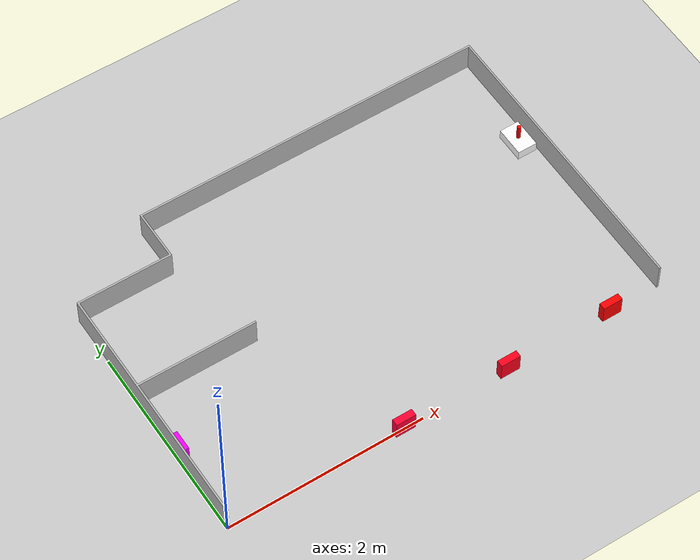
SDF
<?xml version="1.0"?>
<sdf version="1.6">
  <world name="default">
    <physics type="ode">
      <real_time_update_rate>1000.0</real_time_update_rate>
      <max_step_size>0.001</max_step_size>
      <real_time_factor>1</real_time_factor>
      <ode>
        <solver>
          <type>quick</type>
          <iters>150</iters>
          <precon_iters>0</precon_iters>
          <sor>1.400000</sor>
          <use_dynamic_moi_rescaling>1</use_dynamic_moi_rescaling>
        </solver>
        <constraints>
          <cfm>0.00001</cfm>
          <erp>0.2</erp>
          <contact_max_correcting_vel>2000.000000</contact_max_correcting_vel>
          <contact_surface_layer>0.01000</contact_surface_layer>
        </constraints>
      </ode>
    </physics>

    <include>
      <uri>model://ground_plane</uri>
    </include>

    <include>
      <uri>model://sun</uri>
    </include>

    <include>
      <uri>model://my_map</uri>
      <static>true</static>
    </include>

    <!-- Infeed Station -->
    <model name="Infeed Station">
    <!--      x   y   z  rpw -->
      <pose>4.4 2.0 0.05 0 0 0</pose>
      <static>true</static>

      <link name="link">

        <visual name="visual">
          <geometry>
            <box>
              <size>0.20 0.30 0.10</size>
            </box>
          </geometry>
          <material>
            <ambient>1 1 1 1</ambient>
          </material>
        </visual>

        <collision name="collision">
          <geometry>
            <box>
              <size>0.20 0.30 0.10</size>
            </box>
          </geometry>

          <surface>
            <friction>
              <ode>
                <mu>10</mu>
                <mu2>10</mu2>
              </ode>
            </friction>
          </surface>

        </collision>

      </link>
    </model>

    <!-- Obstacle 1 -->
    <model name="Obstacle1">
      <pose>4.4 2.0 0.18 0 0 0</pose>
      <static>false</static>

      <link name="link">

        <visual name="visual">
          <geometry>
            <cylinder>
              <radius>0.02</radius>
              <length>0.15</length>
            </cylinder>
          </geometry>
          <material>
            <ambient>1 0 0 1</ambient>
          </material>
        </visual>

        <collision name="collision">
          <geometry>
            <cylinder>
              <radius>0.02</radius>
              <length>0.15</length>
            </cylinder>
          </geometry>

          <surface>
            <friction>
              <ode>
                <mu>10</mu>
                <mu2>10</mu2>
              </ode>
            </friction>
          </surface>

        </collision>

      </link>
    </model>

    <!-- Station 1 -->
    <model name="Station 1">
    <!--      x   y   z  rpw -->
      <pose>4.0 0.0 0.1 0 0 0</pose>
      <static>true</static>

      <link name="link">

        <visual name="visual">
          <geometry>
            <box>
              <size>0.20 0.07 0.20</size>
            </box>
          </geometry>
          <material>
            <ambient>1 0 0 1</ambient>
          </material>
        </visual>

        <collision name="collision">
          <geometry>
            <box>
              <size>0.20 0.07 0.20</size>
            </box>
          </geometry>

          <surface>
            <friction>
              <ode>
                <mu>10</mu>
                <mu2>10</mu2>
              </ode>
            </friction>
          </surface>

        </collision>

      </link>
    </model>

    <!-- Station 2 -->
    <model name="Station 2">
    <!--      x   y   z  rpw -->
      <pose>2.9 0.0 0.1 0 0 0</pose>
      <static>true</static>

      <link name="link">

        <visual name="visual">
          <geometry>
            <box>
              <size>0.20 0.07 0.20</size>
            </box>
          </geometry>
          <material>
            <ambient>1 0 0.1 1</ambient>
          </material>
        </visual>

        <collision name="collision">
          <geometry>
            <box>
              <size>0.20 0.07 0.20</size>
            </box>
          </geometry>

          <surface>
            <friction>
              <ode>
                <mu>10</mu>
                <mu2>10</mu2>
              </ode>
            </friction>
          </surface>

        </collision>

      </link>
    </model>

    <!-- Station 3 -->
    <model name="Station 3">
    <!--      x   y   z  rpw -->
      <pose>1.8 0.0 0.1 0 0 0</pose>
      <static>true</static>

      <link name="link">

        <visual name="visual">
          <geometry>
            <box>
              <size>0.20 0.07 0.20</size>
            </box>
          </geometry>
          <material>
            <ambient>1 0 0.2 1</ambient>
          </material>
        </visual>

        <collision name="collision">
          <geometry>
            <box>
              <size>0.20 0.07 0.20</size>
            </box>
          </geometry>

          <surface>
            <friction>
              <ode>
                <mu>10</mu>
                <mu2>10</mu2>
              </ode>
            </friction>
          </surface>

        </collision>

      </link>
    </model>

    <!-- Reject Station -->
    <model name="Reject Station">
    <!--      x   y   z  rpw -->
      <pose>0.05 0.85 0.1 0 0 0</pose>
      <static>true</static>

      <link name="link">

        <visual name="visual">
          <geometry>
            <box>
              <size>0.07 0.20 0.20</size>
            </box>
          </geometry>
          <material>
            <ambient>1 0 1 1</ambient>
          </material>
        </visual>

        <collision name="collision">
          <geometry>
            <box>
              <size>0.07 0.20 0.20</size>
            </box>
          </geometry>

          <surface>
            <friction>
              <ode>
                <mu>10</mu>
                <mu2>10</mu2>
              </ode>
            </friction>
          </surface>

        </collision>

      </link>
    </model>

  </world>
</sdf>

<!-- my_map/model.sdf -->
<sdf version="1.6">
  <model name="my_map">
    <static>true</static>
    <link name="map_link">

      <visual name="map_visual">
        <geometry>
          <mesh>
            <uri>model://my_map/meshes/Project_map.stl</uri>
            <scale>0.001 0.001 0.001</scale>  <!-- Scaled down from solidworks -->
          </mesh>
        </geometry>
      </visual>

      <collision name="map_collision">
        <geometry>
          <mesh>
            <uri>model://my_map/meshes/Project_map.stl</uri>
            <scale>0.001 0.001 0.001</scale>
          </mesh>
        </geometry>
      </collision>

    </link>
  </model>
</sdf>
